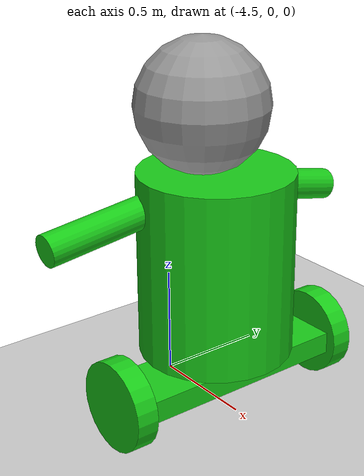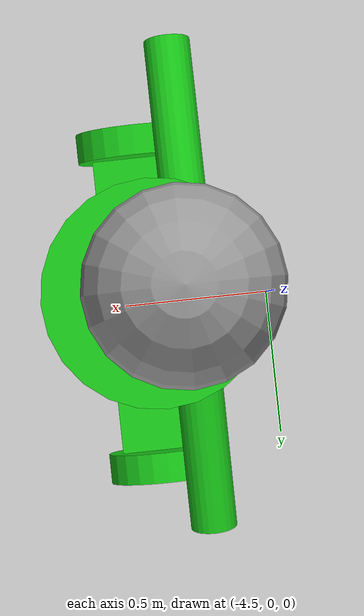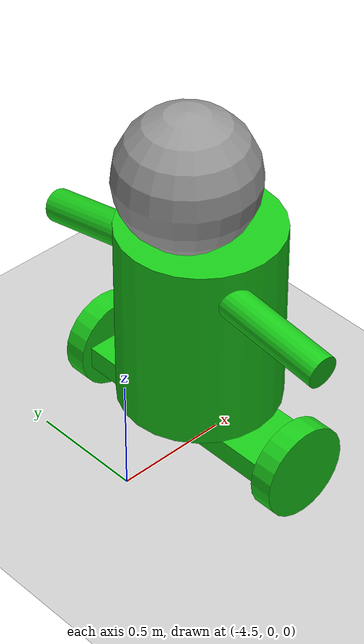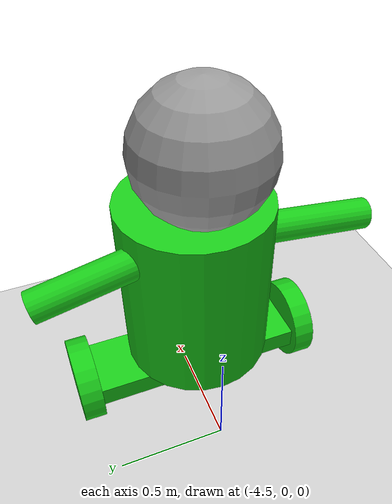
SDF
<sdf version="1.6">
 <world name="default">
  <model name="ground_plane">
   <static>1</static>
   <link name="link">
    <collision name="collision">
     <geometry><plane><normal>0 0 1</normal><size>100 100</size></plane></geometry>
     <surface>
      <contact><collide_bitmask>65535</collide_bitmask></contact>
      <friction><ode><mu>100</mu><mu2>50</mu2></ode></friction>
     </surface>
    </collision>
    <visual name="visual">
     <cast_shadows>0</cast_shadows>
     <geometry><plane><normal>0 0 1</normal><size>100 100</size></plane></geometry>
     <material>
      <script><uri>file://media/materials/scripts/gazebo.material</uri><name>Gazebo/Grey</name></script>
     </material>
    </visual>
   </link>
  </model>
  <model name="model_0">
   <link name="link_0">
    <inertial>
     <mass>1</mass>
     <inertia>
      <ixx>0.166667</ixx>
      <ixy>0</ixy>
      <ixz>0</ixz>
      <iyy>0.166667</iyy>
      <iyz>0</iyz>
      <izz>0.166667</izz>
     </inertia>
    </inertial>
    <pose>0.055686 0.020499 -0.452196 0 -0 0</pose>
    <visual name="visual">
     <geometry><box><size>0.3 1 0.1</size></box></geometry>
     <material>
      <lighting>1</lighting>
      <script><uri>file://media/materials/scripts/gazebo.material</uri><name>Gazebo/Grey</name></script>
      <shader type="pixel"><normal_map>__default__</normal_map></shader>
      <ambient>0.3 0.3 0.3 1</ambient>
      <diffuse>0.1 0.8 0.1 1</diffuse>
      <specular>0.01 0.01 0.01 1</specular>
      <emissive>0 0 0 1</emissive>
     </material>
    </visual>
    <collision name="collision">
     <geometry><box><size>0.3 1 0.1</size></box></geometry>
     <surface>
      <friction>
       <ode><mu>1</mu><mu2>1</mu2><fdir1>0 0 0</fdir1><slip1>0</slip1><slip2>0</slip2></ode>
       <torsional>
        <coefficient>1</coefficient>
        <patch_radius>0</patch_radius>
        <surface_radius>0</surface_radius>
        <use_patch_radius>1</use_patch_radius>
        <ode><slip>0</slip></ode>
       </torsional>
      </friction>
      <bounce><restitution_coefficient>0</restitution_coefficient><threshold>1e+06</threshold></bounce>
      <contact>
       <collide_without_contact>0</collide_without_contact>
       <collide_without_contact_bitmask>1</collide_without_contact_bitmask>
       <collide_bitmask>1</collide_bitmask>
       <ode>
        <soft_cfm>0</soft_cfm>
        <soft_erp>0.2</soft_erp>
        <kp>1e+13</kp>
        <kd>1</kd>
        <max_vel>0.01</max_vel>
        <min_depth>0</min_depth>
       </ode>
       <bullet>
        <split_impulse>1</split_impulse>
        <split_impulse_penetration_threshold>-0.01</split_impulse_penetration_threshold>
        <soft_cfm>0</soft_cfm>
        <soft_erp>0.2</soft_erp>
        <kp>1e+13</kp>
        <kd>1</kd>
       </bullet>
      </contact>
     </surface>
    </collision>
   </link>
   <link name="link_2">
    <inertial>
     <mass>1</mass>
     <inertia><ixx>0.145833</ixx><ixy>0</ixy><ixz>0</ixz><iyy>0.145833</iyy><iyz>0</iyz><izz>0.125</izz></inertia>
     <pose>0 0 0 1.57 -0 0</pose>
    </inertial>
    <pose>0.055686 -0.52966 -0.451499 1.57 -0 0</pose>
    <visual name="visual">
     <geometry><cylinder><radius>0.2</radius><length>0.1</length></cylinder></geometry>
     <material>
      <lighting>1</lighting>
      <script><uri>file://media/materials/scripts/gazebo.material</uri><name>Gazebo/Grey</name></script>
      <shader type="pixel"><normal_map>__default__</normal_map></shader>
      <ambient>0.3 0.3 0.3 1</ambient>
      <diffuse>0.1 0.8 0.1 1</diffuse>
      <specular>0.01 0.01 0.01 1</specular>
      <emissive>0 0 0 1</emissive>
     </material>
    </visual>
    <collision name="collision">
     <geometry><cylinder><radius>0.2</radius><length>0.1</length></cylinder></geometry>
     <surface>
      <friction>
       <ode><mu>1</mu><mu2>1</mu2><fdir1>0 0 0</fdir1><slip1>0</slip1><slip2>0</slip2></ode>
       <torsional>
        <coefficient>1</coefficient>
        <patch_radius>0</patch_radius>
        <surface_radius>0</surface_radius>
        <use_patch_radius>1</use_patch_radius>
        <ode><slip>0</slip></ode>
       </torsional>
      </friction>
      <bounce><restitution_coefficient>0</restitution_coefficient><threshold>1e+06</threshold></bounce>
      <contact>
       <collide_without_contact>0</collide_without_contact>
       <collide_without_contact_bitmask>1</collide_without_contact_bitmask>
       <collide_bitmask>1</collide_bitmask>
       <ode>
        <soft_cfm>0</soft_cfm>
        <soft_erp>0.2</soft_erp>
        <kp>1e+13</kp>
        <kd>1</kd>
        <max_vel>0.01</max_vel>
        <min_depth>0</min_depth>
       </ode>
       <bullet>
        <split_impulse>1</split_impulse>
        <split_impulse_penetration_threshold>-0.01</split_impulse_penetration_threshold>
        <soft_cfm>0</soft_cfm>
        <soft_erp>0.2</soft_erp>
        <kp>1e+13</kp>
        <kd>1</kd>
       </bullet>
      </contact>
     </surface>
    </collision>
   </link>
   <link name="link_2_clone">
    <inertial>
     <mass>1</mass>
     <inertia><ixx>0.145833</ixx><ixy>0</ixy><ixz>0</ixz><iyy>0.145833</iyy><iyz>0</iyz><izz>0.125</izz></inertia>
     <pose>0 0 0 1.57 -0 0</pose>
    </inertial>
    <pose>0.055686 0.570658 -0.451499 1.57 -0 0</pose>
    <visual name="visual">
     <geometry><cylinder><radius>0.2</radius><length>0.1</length></cylinder></geometry>
     <material>
      <lighting>1</lighting>
      <script><uri>file://media/materials/scripts/gazebo.material</uri><name>Gazebo/Grey</name></script>
      <shader type="pixel"><normal_map>__default__</normal_map></shader>
      <ambient>0.3 0.3 0.3 1</ambient>
      <diffuse>0.1 0.8 0.1 1</diffuse>
      <specular>0.01 0.01 0.01 1</specular>
      <emissive>0 0 0 1</emissive>
     </material>
    </visual>
    <collision name="collision">
     <geometry><cylinder><radius>0.2</radius><length>0.1</length></cylinder></geometry>
     <surface>
      <friction>
       <ode><mu>1</mu><mu2>1</mu2><fdir1>0 0 0</fdir1><slip1>0</slip1><slip2>0</slip2></ode>
       <torsional>
        <coefficient>1</coefficient>
        <patch_radius>0</patch_radius>
        <surface_radius>0</surface_radius>
        <use_patch_radius>1</use_patch_radius>
        <ode><slip>0</slip></ode>
       </torsional>
      </friction>
      <bounce><restitution_coefficient>0</restitution_coefficient><threshold>1e+06</threshold></bounce>
      <contact>
       <collide_without_contact>0</collide_without_contact>
       <collide_without_contact_bitmask>1</collide_without_contact_bitmask>
       <collide_bitmask>1</collide_bitmask>
       <ode>
        <soft_cfm>0</soft_cfm>
        <soft_erp>0.2</soft_erp>
        <kp>1e+13</kp>
        <kd>1</kd>
        <max_vel>0.01</max_vel>
        <min_depth>0</min_depth>
       </ode>
       <bullet>
        <split_impulse>1</split_impulse>
        <split_impulse_penetration_threshold>-0.01</split_impulse_penetration_threshold>
        <soft_cfm>0</soft_cfm>
        <soft_erp>0.2</soft_erp>
        <kp>1e+13</kp>
        <kd>1</kd>
       </bullet>
      </contact>
     </surface>
    </collision>
   </link>
   <link name="link_3">
    <inertial>
     <mass>0.381152</mass>
     <inertia>
      <ixx>0.0324431</ixx>
      <ixy>0</ixy>
      <ixz>0</ixz>
      <iyy>0.0324431</iyy>
      <iyz>0</iyz>
      <izz>0.0221347</izz>
     </inertia>
    </inertial>
    <pose>0.031076 -0.00434 0.056769 0 -0 0</pose>
    <visual name="visual">
     <geometry><cylinder><radius>0.340802</radius><length>0.820355</length></cylinder></geometry>
     <material>
      <lighting>1</lighting>
      <script><uri>file://media/materials/scripts/gazebo.material</uri><name>Gazebo/Grey</name></script>
      <shader type="pixel"><normal_map>__default__</normal_map></shader>
      <diffuse>0.1 0.8 0.1 0</diffuse>
      <ambient>0.3 0.3 0.3 1</ambient>
      <specular>0.01 0.01 0.01 1</specular>
      <emissive>0 0 0 1</emissive>
     </material>
    </visual>
    <collision name="collision">
     <geometry><cylinder><radius>0.340802</radius><length>0.820355</length></cylinder></geometry>
     <surface>
      <friction>
       <ode><mu>1</mu><mu2>1</mu2><fdir1>0 0 0</fdir1><slip1>0</slip1><slip2>0</slip2></ode>
       <torsional>
        <coefficient>1</coefficient>
        <patch_radius>0</patch_radius>
        <surface_radius>0</surface_radius>
        <use_patch_radius>1</use_patch_radius>
        <ode><slip>0</slip></ode>
       </torsional>
      </friction>
      <bounce><restitution_coefficient>0</restitution_coefficient><threshold>1e+06</threshold></bounce>
      <contact>
       <collide_without_contact>0</collide_without_contact>
       <collide_without_contact_bitmask>1</collide_without_contact_bitmask>
       <collide_bitmask>1</collide_bitmask>
       <ode>
        <soft_cfm>0</soft_cfm>
        <soft_erp>0.2</soft_erp>
        <kp>1e+13</kp>
        <kd>1</kd>
        <max_vel>0.01</max_vel>
        <min_depth>0</min_depth>
       </ode>
       <bullet>
        <split_impulse>1</split_impulse>
        <split_impulse_penetration_threshold>-0.01</split_impulse_penetration_threshold>
        <soft_cfm>0</soft_cfm>
        <soft_erp>0.2</soft_erp>
        <kp>1e+13</kp>
        <kd>1</kd>
       </bullet>
      </contact>
     </surface>
    </collision>
   </link>
   <link name="link_4">
    <inertial>
     <mass>0.19884</mass>
     <inertia>
      <ixx>0.00677399</ixx>
      <ixy>0</ixy>
      <ixz>0</ixz>
      <iyy>0.00677399</iyy>
      <iyz>0</iyz>
      <izz>0.00677399</izz>
     </inertia>
    </inertial>
    <pose>-0.049504 -0.013475 0.730364 0 -0 0</pose>
    <visual name="visual">
     <geometry><sphere><radius>0.291837</radius></sphere></geometry>
     <material>
      <lighting>1</lighting>
      <script><uri>file://media/materials/scripts/gazebo.material</uri><name>Gazebo/Grey</name></script>
      <shader type="pixel"><normal_map>__default__</normal_map></shader>
      <ambient>0.3 0.3 0.3 1</ambient>
      <diffuse>0.7 0.7 0.7 1</diffuse>
      <specular>0.01 0.01 0.01 1</specular>
      <emissive>0.1 0.8 0.1 1</emissive>
     </material>
    </visual>
    <collision name="collision">
     <geometry><sphere><radius>0.291837</radius></sphere></geometry>
     <surface>
      <friction>
       <ode><mu>1</mu><mu2>1</mu2><fdir1>0 0 0</fdir1><slip1>0</slip1><slip2>0</slip2></ode>
       <torsional>
        <coefficient>1</coefficient>
        <patch_radius>0</patch_radius>
        <surface_radius>0</surface_radius>
        <use_patch_radius>1</use_patch_radius>
        <ode><slip>0</slip></ode>
       </torsional>
      </friction>
      <bounce><restitution_coefficient>0</restitution_coefficient><threshold>1e+06</threshold></bounce>
      <contact>
       <collide_without_contact>0</collide_without_contact>
       <collide_without_contact_bitmask>1</collide_without_contact_bitmask>
       <collide_bitmask>1</collide_bitmask>
       <ode>
        <soft_cfm>0</soft_cfm>
        <soft_erp>0.2</soft_erp>
        <kp>1e+13</kp>
        <kd>1</kd>
        <max_vel>0.01</max_vel>
        <min_depth>0</min_depth>
       </ode>
       <bullet>
        <split_impulse>1</split_impulse>
        <split_impulse_penetration_threshold>-0.01</split_impulse_penetration_threshold>
        <soft_cfm>0</soft_cfm>
        <soft_erp>0.2</soft_erp>
        <kp>1e+13</kp>
        <kd>1</kd>
       </bullet>
      </contact>
     </surface>
    </collision>
   </link>
   <link name="link_5">
    <inertial>
     <mass>0.0103595</mass>
     <inertia>
      <ixx>0.000249</ixx>
      <ixy>0</ixy>
      <ixz>0</ixz>
      <iyy>0.000249</iyy>
      <iyz>0</iyz>
      <izz>2.56e-05</izz>
     </inertia>
    </inertial>
    <pose>-0.079894 -0.509739 0.296414 -1.44968 0 0</pose>
    <visual name="visual">
     <geometry><cylinder><radius>0.0703013</radius><length>0.523072</length></cylinder></geometry>
     <material>
      <lighting>1</lighting>
      <script><uri>file://media/materials/scripts/gazebo.material</uri><name>Gazebo/Grey</name></script>
      <shader type="pixel"><normal_map>__default__</normal_map></shader>
      <diffuse>0.1 0.8 0.1 1</diffuse>
      <ambient>0.3 0.3 0.3 1</ambient>
      <specular>0.01 0.01 0.01 1</specular>
      <emissive>0 0 0 1</emissive>
     </material>
    </visual>
    <collision name="collision">
     <geometry><cylinder><radius>0.070301</radius><length>0.523072</length></cylinder></geometry>
     <surface>
      <friction>
       <ode><mu>1</mu><mu2>1</mu2><fdir1>0 0 0</fdir1><slip1>0</slip1><slip2>0</slip2></ode>
       <torsional>
        <coefficient>1</coefficient>
        <patch_radius>0</patch_radius>
        <surface_radius>0</surface_radius>
        <use_patch_radius>1</use_patch_radius>
        <ode><slip>0</slip></ode>
       </torsional>
      </friction>
      <bounce><restitution_coefficient>0</restitution_coefficient><threshold>1e+06</threshold></bounce>
      <contact>
       <collide_without_contact>0</collide_without_contact>
       <collide_without_contact_bitmask>1</collide_without_contact_bitmask>
       <collide_bitmask>1</collide_bitmask>
       <ode>
        <soft_cfm>0</soft_cfm>
        <soft_erp>0.2</soft_erp>
        <kp>1e+13</kp>
        <kd>1</kd>
        <max_vel>0.01</max_vel>
        <min_depth>0</min_depth>
       </ode>
       <bullet>
        <split_impulse>1</split_impulse>
        <split_impulse_penetration_threshold>-0.01</split_impulse_penetration_threshold>
        <soft_cfm>0</soft_cfm>
        <soft_erp>0.2</soft_erp>
        <kp>1e+13</kp>
        <kd>1</kd>
       </bullet>
      </contact>
     </surface>
    </collision>
   </link>
   <link name="link_5_clone">
    <inertial>
     <mass>0.0103595</mass>
     <inertia>
      <ixx>0.000249</ixx>
      <ixy>0</ixy>
      <ixz>0</ixz>
      <iyy>0.000249</iyy>
      <iyz>0</iyz>
      <izz>2.56e-05</izz>
     </inertia>
    </inertial>
    <pose>-0.068734 0.466057 0.271648 -1.78091 0 0</pose>
    <visual name="visual">
     <geometry><cylinder><radius>0.0703013</radius><length>0.523072</length></cylinder></geometry>
     <material>
      <lighting>1</lighting>
      <script><uri>file://media/materials/scripts/gazebo.material</uri><name>Gazebo/Grey</name></script>
      <shader type="pixel"><normal_map>__default__</normal_map></shader>
      <diffuse>0.1 0.8 0.1 0</diffuse>
      <ambient>0.3 0.3 0.3 1</ambient>
      <specular>0.01 0.01 0.01 1</specular>
      <emissive>0 0 0 1</emissive>
     </material>
    </visual>
    <collision name="collision">
     <geometry><cylinder><radius>0.070301</radius><length>0.523072</length></cylinder></geometry>
     <surface>
      <friction>
       <ode><mu>1</mu><mu2>1</mu2><fdir1>0 0 0</fdir1><slip1>0</slip1><slip2>0</slip2></ode>
       <torsional>
        <coefficient>1</coefficient>
        <patch_radius>0</patch_radius>
        <surface_radius>0</surface_radius>
        <use_patch_radius>1</use_patch_radius>
        <ode><slip>0</slip></ode>
       </torsional>
      </friction>
      <bounce><restitution_coefficient>0</restitution_coefficient><threshold>1e+06</threshold></bounce>
      <contact>
       <collide_without_contact>0</collide_without_contact>
       <collide_without_contact_bitmask>1</collide_without_contact_bitmask>
       <collide_bitmask>1</collide_bitmask>
       <ode>
        <soft_cfm>0</soft_cfm>
        <soft_erp>0.2</soft_erp>
        <kp>1e+13</kp>
        <kd>1</kd>
        <max_vel>0.01</max_vel>
        <min_depth>0</min_depth>
       </ode>
       <bullet>
        <split_impulse>1</split_impulse>
        <split_impulse_penetration_threshold>-0.01</split_impulse_penetration_threshold>
        <soft_cfm>0</soft_cfm>
        <soft_erp>0.2</soft_erp>
        <kp>1e+13</kp>
        <kd>1</kd>
       </bullet>
      </contact>
     </surface>
    </collision>
   </link>
   <joint name="link_0_JOINT_3" type="revolute">
    <parent>link_0</parent>
    <child>link_2</child>
    <axis>
     <xyz>0 0 1</xyz>
     <limit>
      <lower>-1.79769e+308</lower>
      <upper>1.79769e+308</upper>
      <effort>-1</effort>
      <velocity>-1</velocity>
     </limit>
     <dynamics>
      <spring_reference>0</spring_reference>
      <spring_stiffness>0</spring_stiffness>
      <damping>0</damping>
     </dynamics>
     <use_parent_model_frame>0</use_parent_model_frame>
    </axis>
    <physics>
     <ode><limit><cfm>0</cfm><erp>0.2</erp></limit><suspension><cfm>0</cfm><erp>0.2</erp></suspension></ode>
    </physics>
   </joint>
   <joint name="link_0_JOINT_4" type="revolute">
    <parent>link_0</parent>
    <child>link_2_clone</child>
    <axis>
     <xyz>0 0 1</xyz>
     <limit>
      <lower>-1.79769e+308</lower>
      <upper>1.79769e+308</upper>
      <effort>-1</effort>
      <velocity>-1</velocity>
     </limit>
     <dynamics>
      <spring_reference>0</spring_reference>
      <spring_stiffness>0</spring_stiffness>
      <damping>0</damping>
     </dynamics>
     <use_parent_model_frame>0</use_parent_model_frame>
    </axis>
    <physics>
     <ode><limit><cfm>0</cfm><erp>0.2</erp></limit><suspension><cfm>0</cfm><erp>0.2</erp></suspension></ode>
    </physics>
   </joint>
   <static>0</static>
   <pose>-4.14953 -0.020499 0.651539 0 -0 0</pose>
  </model>
 </world>
</sdf>
